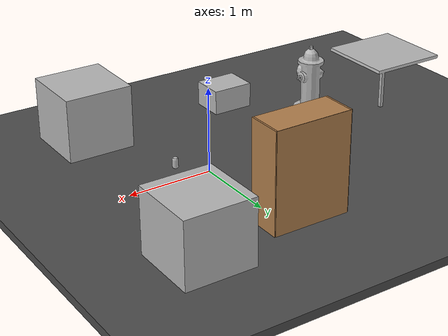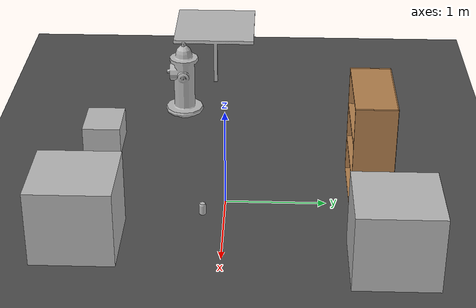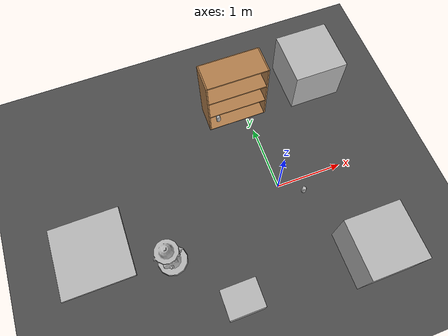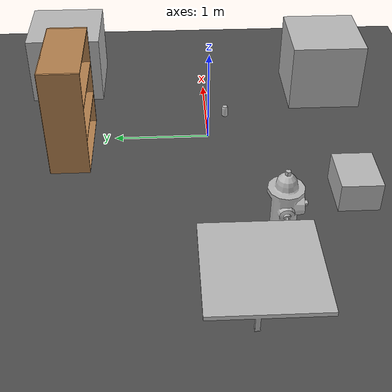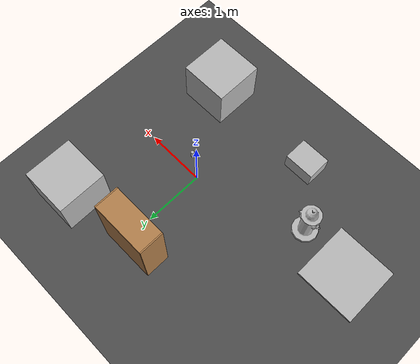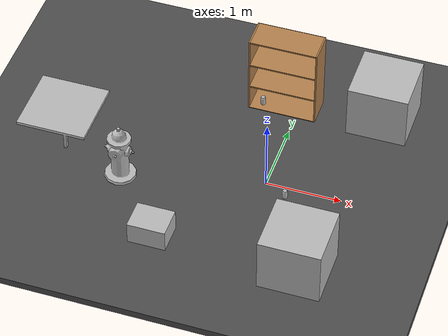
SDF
<sdf version="1.7">
 <world name="default">
  <light name="sun" type="directional">
   <pose>0 0 10 0 -0 0</pose>
   <diffuse>0.8 0.8 0.8 1</diffuse>
   <specular>0.2 0.2 0.2 1</specular>
   <attenuation>
    <range>1000</range>
    <constant>0.9</constant>
    <linear>0.01</linear>
    <quadratic>0.001</quadratic>
   </attenuation>
   <direction>-0.5 0.1 -0.9</direction>
   <spot><inner_angle>0</inner_angle><outer_angle>0</outer_angle><falloff>0</falloff></spot>
  </light>
  <model name="ground_plane">
   <static>1</static>
   <link name="link">
    <collision name="collision">
     <geometry><plane><normal>0 0 1</normal><size>100 100</size></plane></geometry>
     <surface>
      <contact><collide_bitmask>65535</collide_bitmask></contact>
      <friction><ode><mu>100</mu><mu2>50</mu2></ode></friction>
     </surface>
    </collision>
    <visual name="visual">
     <cast_shadows>0</cast_shadows>
     <geometry><plane><normal>0 0 1</normal><size>100 100</size></plane></geometry>
     <material>
      <script><uri>file://media/materials/scripts/gazebo.material</uri><name>Gazebo/Grey</name></script>
     </material>
    </visual>
   </link>
  </model>
  <gravity>0 0 -9.8</gravity>
  <magnetic_field>6e-06 2.3e-05 -4.2e-05</magnetic_field>
  <atmosphere type="adiabatic"/>
  <physics type="ode">
   <max_step_size>0.001</max_step_size>
   <real_time_factor>1</real_time_factor>
   <real_time_update_rate>1000</real_time_update_rate>
  </physics>
  <scene><ambient>0.4 0.4 0.4 1</ambient><background>0.7 0.7 0.7 1</background><shadows>1</shadows></scene>
  <spherical_coordinates>
   <surface_model>EARTH_WGS84</surface_model>
   <latitude_deg>0</latitude_deg>
   <longitude_deg>0</longitude_deg>
   <elevation>0</elevation>
   <heading_deg>0</heading_deg>
  </spherical_coordinates>
  <model name="asphalt_plane">
   <static>1</static>
   <link name="link">
    <collision name="collision"><geometry><box><size>20 20 0.1</size></box></geometry></collision>
    <visual name="visual">
     <cast_shadows>0</cast_shadows>
     <geometry><box><size>20 20 0.1</size></box></geometry>
     <material>
      <script>
       <uri>model://asphalt_plane/materials/scripts</uri>
       <uri>model://asphalt_plane/materials/textures</uri>
       <name>vrc/asphalt</name>
      </script>
     </material>
    </visual>
   </link>
   <pose>0.014502 0.067932 0 0 -0 0</pose>
  </model>
  <model name="bookshelf">
   <static>1</static>
   <link name="link">
    <inertial><mass>1</mass></inertial>
    <collision name="back">
     <pose>0 0.005 0.6 0 -0 0</pose>
     <geometry><box><size>0.9 0.01 1.2</size></box></geometry>
    </collision>
    <visual name="visual1">
     <pose>0 0.005 0.6 0 -0 0</pose>
     <geometry><box><size>0.9 0.01 1.2</size></box></geometry>
     <material>
      <script><uri>file://media/materials/scripts/gazebo.material</uri><name>Gazebo/Wood</name></script>
     </material>
    </visual>
    <collision name="left_side">
     <pose>0.45 -0.195 0.6 0 -0 0</pose>
     <geometry><box><size>0.02 0.4 1.2</size></box></geometry>
    </collision>
    <visual name="visual2">
     <pose>0.45 -0.195 0.6 0 -0 0</pose>
     <geometry><box><size>0.02 0.4 1.2</size></box></geometry>
     <material>
      <script><uri>file://media/materials/scripts/gazebo.material</uri><name>Gazebo/Wood</name></script>
     </material>
    </visual>
    <collision name="right_side">
     <pose>-0.45 -0.195 0.6 0 -0 0</pose>
     <geometry><box><size>0.02 0.4 1.2</size></box></geometry>
    </collision>
    <visual name="visual3">
     <pose>-0.45 -0.195 0.6 0 -0 0</pose>
     <geometry><box><size>0.02 0.4 1.2</size></box></geometry>
     <material>
      <script><uri>file://media/materials/scripts/gazebo.material</uri><name>Gazebo/Wood</name></script>
     </material>
    </visual>
    <collision name="bottom">
     <pose>0 -0.195 0.03 0 -0 0</pose>
     <geometry><box><size>0.88 0.4 0.06</size></box></geometry>
    </collision>
    <visual name="visual4">
     <pose>0 -0.195 0.03 0 -0 0</pose>
     <geometry><box><size>0.88 0.4 0.06</size></box></geometry>
     <material>
      <script><uri>file://media/materials/scripts/gazebo.material</uri><name>Gazebo/Wood</name></script>
     </material>
    </visual>
    <collision name="top">
     <pose>0 -0.195 1.19 0 -0 0</pose>
     <geometry><box><size>0.88 0.4 0.02</size></box></geometry>
    </collision>
    <visual name="visual5">
     <pose>0 -0.195 1.19 0 -0 0</pose>
     <geometry><box><size>0.88 0.4 0.02</size></box></geometry>
     <material>
      <script><uri>file://media/materials/scripts/gazebo.material</uri><name>Gazebo/Wood</name></script>
     </material>
    </visual>
    <collision name="low_shelf">
     <pose>0 -0.195 0.43 0 -0 0</pose>
     <geometry><box><size>0.88 0.4 0.02</size></box></geometry>
    </collision>
    <visual name="visual6">
     <pose>0 -0.195 0.43 0 -0 0</pose>
     <geometry><box><size>0.88 0.4 0.02</size></box></geometry>
     <material>
      <script><uri>file://media/materials/scripts/gazebo.material</uri><name>Gazebo/Wood</name></script>
     </material>
    </visual>
    <collision name="high_shelf">
     <pose>0 -0.195 0.8 0 -0 0</pose>
     <geometry><box><size>0.88 0.4 0.02</size></box></geometry>
    </collision>
    <visual name="visual7">
     <pose>0 -0.195 0.8 0 -0 0</pose>
     <geometry><box><size>0.88 0.4 0.02</size></box></geometry>
     <material>
      <script><uri>file://media/materials/scripts/gazebo.material</uri><name>Gazebo/Wood</name></script>
     </material>
    </visual>
   </link>
   <pose>-0.180733 1.62018 0 0 -0 0</pose>
  </model>
  <model name="coke_can">
   <link name="link">
    <inertial>
     <pose>0 0 0.06 0 -0 0</pose>
     <mass>0.39</mass>
     <inertia>
      <ixx>0.00055575</ixx>
      <ixy>0</ixy>
      <ixz>0</ixz>
      <iyy>0.00055575</iyy>
      <iyz>0</iyz>
      <izz>0.0001755</izz>
     </inertia>
    </inertial>
    <collision name="collision">
     <pose>0.003937 0.004724 -0.18 0 -0 0</pose>
     <geometry><mesh><uri>model://coke_can/meshes/coke_can.dae</uri></mesh></geometry>
     <surface>
      <friction><ode><mu>1</mu><mu2>1</mu2></ode></friction>
      <contact><ode><kp>1e+07</kp><kd>1</kd><min_depth>0.001</min_depth><max_vel>0.1</max_vel></ode></contact>
     </surface>
    </collision>
    <visual name="visual">
     <pose>0.003937 0.004724 -0.18 0 -0 0</pose>
     <geometry><mesh><uri>model://coke_can/meshes/coke_can.dae</uri></mesh></geometry>
    </visual>
   </link>
   <pose>-0.46254 1.34283 0.056694 0.00993 -0.035684 0.016699</pose>
  </model>
  <model name="number1">
   <pose>1.11627 1.5712 0.4 0 -0 0</pose>
   <static>1</static>
   <link name="link">
    <visual name="visual">
     <geometry><mesh><uri>model://number1/meshes/number.dae</uri></mesh></geometry>
     <material>
      <script>
       <uri>model://number1/materials/scripts</uri>
       <uri>model://number1/materials/textures</uri>
       <name>Number/One</name>
      </script>
     </material>
    </visual>
   </link>
  </model>
  <model name="number5">
   <pose>0.827442 -1.34764 0.4 0 -0 0</pose>
   <static>1</static>
   <link name="link">
    <visual name="visual">
     <geometry><mesh><uri>model://number1/meshes/number.dae</uri></mesh></geometry>
     <material>
      <script>
       <uri>model://number5/materials/scripts</uri>
       <uri>model://number5/materials/textures</uri>
       <name>Number/Five</name>
      </script>
     </material>
    </visual>
   </link>
  </model>
  <model name="cardboard_box">
   <pose>-1.07399 -1.34612 0.199 0 -0 0</pose>
   <link name="link">
    <inertial>
     <mass>2</mass>
     <inertia>
      <ixx>0.0416667</ixx>
      <ixy>0</ixy>
      <ixz>0</ixz>
      <iyy>0.0566667</iyy>
      <iyz>0</iyz>
      <izz>0.0683333</izz>
     </inertia>
    </inertial>
    <collision name="collision">
     <geometry><box><size>0.5 0.4 0.3</size></box></geometry>
     <surface>
      <friction><ode><mu>1</mu><mu2>1</mu2></ode></friction>
      <contact><ode><kp>1e+07</kp><kd>1</kd><min_depth>0.001</min_depth><max_vel>0.1</max_vel></ode></contact>
     </surface>
    </collision>
    <visual name="visual">
     <pose>0 0 -0.15 0 -0 0</pose>
     <geometry>
      <mesh><uri>model://cardboard_box/meshes/cardboard_box.dae</uri><scale>1.25932 1.00745 0.755591</scale></mesh>
     </geometry>
    </visual>
   </link>
  </model>
  <model name="fire_hydrant">
   <static>1</static>
   <link name="link">
    <collision name="collision">
     <geometry><mesh><uri>model://fire_hydrant/meshes/fire_hydrant.dae</uri></mesh></geometry>
    </collision>
    <visual name="visual">
     <geometry><mesh><uri>model://fire_hydrant/meshes/fire_hydrant.dae</uri></mesh></geometry>
    </visual>
   </link>
   <pose>-1.78458 -0.530883 0 0 -0 0</pose>
  </model>
  <model name="coke_can_0">
   <link name="link">
    <inertial>
     <pose>0 0 0.06 0 -0 0</pose>
     <mass>0.39</mass>
     <inertia>
      <ixx>0.00055575</ixx>
      <ixy>0</ixy>
      <ixz>0</ixz>
      <iyy>0.00055575</iyy>
      <iyz>0</iyz>
      <izz>0.0001755</izz>
     </inertia>
    </inertial>
    <collision name="collision">
     <pose>0.003937 0.004724 -0.18 0 -0 0</pose>
     <geometry><mesh><uri>model://coke_can/meshes/coke_can.dae</uri></mesh></geometry>
     <surface>
      <friction><ode><mu>1</mu><mu2>1</mu2></ode></friction>
      <contact><ode><kp>1e+07</kp><kd>1</kd><min_depth>0.001</min_depth><max_vel>0.1</max_vel></ode></contact>
     </surface>
    </collision>
    <visual name="visual">
     <pose>0.003937 0.004724 -0.18 0 -0 0</pose>
     <geometry><mesh><uri>model://coke_can/meshes/coke_can.dae</uri></mesh></geometry>
    </visual>
   </link>
   <pose>0.314704 -0.206723 0.047421 -0.007058 0.002527 0.006738</pose>
  </model>
  <model name="cafe_table">
   <static>1</static>
   <link name="link">
    <collision name="surface">
     <pose>0 0 0.755 0 -0 0</pose>
     <geometry><box><size>0.913 0.913 0.04</size></box></geometry>
    </collision>
    <collision name="column">
     <pose>0 0 0.37 0 -0 0</pose>
     <geometry><box><size>0.042 0.042 0.74</size></box></geometry>
    </collision>
    <collision name="base">
     <pose>0 0 0.02 0 -0 0</pose>
     <geometry><box><size>0.56 0.56 0.04</size></box></geometry>
    </collision>
    <visual name="visual">
     <geometry><mesh><uri>model://cafe_table/meshes/cafe_table.dae</uri></mesh></geometry>
    </visual>
   </link>
   <pose>-2.65532 -0.224267 0 0 -0 0</pose>
  </model>
 </world>
</sdf>
